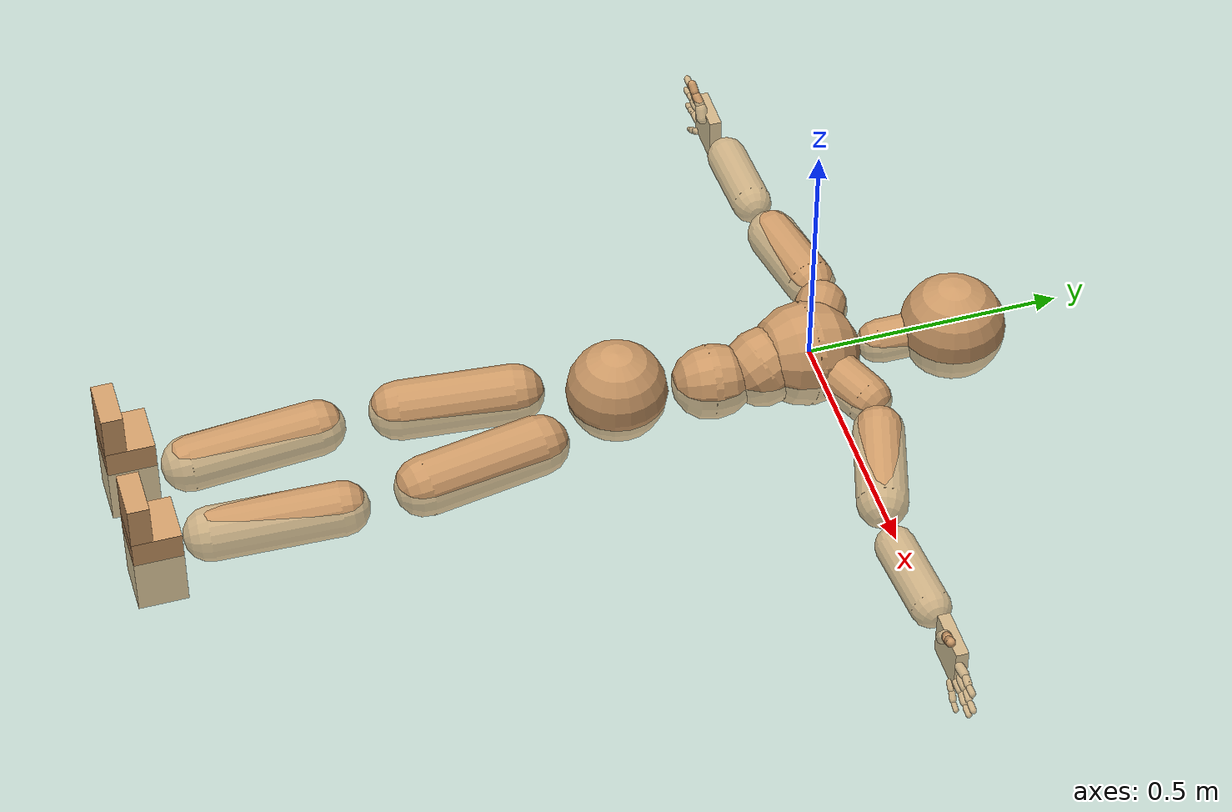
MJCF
<mujoco model="humanoid">
  <compiler coordinate="local"/>
  <default>
    <joint damping="0.0" armature="0.01" stiffness="0.0" limited="true"/>
    <geom conaffinity="1" condim="3" contype="7" margin="0.001" rgba="0.8 0.6 .4 1"/>
  </default>
  <asset>
    <texture type="skybox" builtin="gradient" rgb1=".4 .5 .6" rgb2="0 0 0" width="100" height="100"/>
    <texture builtin="flat" height="1278" mark="cross" markrgb="1 1 1" name="texgeom" random="0.01" rgb1="0.8 0.6 0.4" rgb2="0.8 0.6 0.4" type="cube" width="127"/>
    <texture builtin="checker" height="100" name="texplane" rgb1="0 0 0" rgb2="0.8 0.8 0.8" type="2d" width="100"/>
    <material name="MatPlane" reflectance="0.5" shininess="1" specular="1" texrepeat="60 60" texture="texplane"/>
    <material name="geom" texture="texgeom" texuniform="true"/>
  </asset>
  <worldbody>
    <light cutoff="100" diffuse="1 1 1" dir="-0 0 -1.3" directional="true" exponent="1" pos="0 0 1.3" specular=".1 .1 .1"/>
    <geom conaffinity="1" condim="3" name="floor" pos="0 0 0" rgba="0.8 0.9 0.8 1" size="100 100 .2" type="plane" material="MatPlane"/>
    <body name="Pelvis" pos="0.0028 -0.3841 0.0091">
      <freejoint name="Pelvis"/>
      <geom type="sphere" contype="1" conaffinity="1" density="4629.6296296296305" size="0.0975" pos="0.0000 0.0000 0.0000" name="Pelvis"/>
      <body name="L_Hip" pos="0.0563 -0.096 -0.0268">
        <joint name="L_Hip_x" type="hinge" pos="0 0 0" axis="1 0 0" user="250 2.5 1 500 10 2" armature="0.01" range="-90.0000 90.0000" damping="0" stiffness="0"/>
        <joint name="L_Hip_y" type="hinge" pos="0 0 0" axis="0 1 0" user="250 2.5 1 500 10 2" armature="0.01" range="-90.0000 90.0000" damping="0" stiffness="0"/>
        <joint name="L_Hip_z" type="hinge" pos="0 0 0" axis="0 0 1" user="250 2.5 1 500 10 2" armature="0.01" range="-90.0000 90.0000" damping="0" stiffness="0"/>
        <geom type="capsule" contype="1" conaffinity="1" density="2040.816327" fromto="0.0117 -0.0767 -0.0018 0.0468 -0.3069 -0.0071" size="0.0582" name="L_Hip"/>
        <body name="L_Knee" pos="0.0585 -0.3837 -0.0089">
          <joint name="L_Knee_x" type="hinge" pos="0 0 0" axis="1 0 0" user="250 2.5 1 500 10 2" armature="0.01" range="-180.0000 180.0000" damping="0" stiffness="0"/>
          <joint name="L_Knee_y" type="hinge" pos="0 0 0" axis="0 1 0" user="250 2.5 1 500 10 2" armature="0.01" range="-5.6250 5.6250" damping="0" stiffness="0"/>
          <joint name="L_Knee_z" type="hinge" pos="0 0 0" axis="0 0 1" user="250 2.5 1 500 10 2" armature="0.01" range="-5.6250 5.6250" damping="0" stiffness="0"/>
          <geom type="capsule" contype="1" conaffinity="1" density="1234.567901" fromto="-0.0085 -0.0816 -0.0065 -0.0340 -0.3264 -0.0261" size="0.0523" name="L_Knee"/>
          <body name="L_Ankle" pos="-0.0425 -0.408 -0.0326">
            <joint name="L_Ankle_x" type="hinge" pos="0 0 0" axis="1 0 0" user="150 2.5 1 500 10 2" armature="0.01" range="-90.0000 90.0000" damping="0" stiffness="0"/>
            <joint name="L_Ankle_y" type="hinge" pos="0 0 0" axis="0 1 0" user="150 2.5 1 500 10 2" armature="0.01" range="-90.0000 90.0000" damping="0" stiffness="0"/>
            <joint name="L_Ankle_z" type="hinge" pos="0 0 0" axis="0 0 1" user="150 2.5 1 500 10 2" armature="0.01" range="-90.0000 90.0000" damping="0" stiffness="0"/>
            <geom type="box" density="447.246152" pos="0.0411 -0.0299 0.0247" size="0.05 0.0473 0.0861" quat="1.0000 0.0000 0.0000 0.0000" name="L_Ankle"/>
            <body name="L_Toe" pos="0.0477 -0.0604 0.1203">
              <joint name="L_Toe_x" type="hinge" pos="0 0 0" axis="1 0 0" user="150 1 1 500 1 1" armature="0.01" range="-90.0000 90.0000" damping="0" stiffness="0"/>
              <joint name="L_Toe_y" type="hinge" pos="0 0 0" axis="0 1 0" user="150 1 1 500 1 1" armature="0.01" range="-45.0000 45.0000" damping="0" stiffness="0"/>
              <joint name="L_Toe_z" type="hinge" pos="0 0 0" axis="0 0 1" user="150 1 1 500 1 1" armature="0.01" range="-45.0000 45.0000" damping="0" stiffness="0"/>
              <geom type="box" density="423.851715" pos="-0.0066 0.0038 0.0261" size="0.048 0.0206 0.0499" quat="1.0000 0.0000 0.0000 0.0000" name="L_Toe"/>
            </body>
          </body>
        </body>
      </body>
      <body name="R_Hip" pos="-0.0612 -0.1078 -0.0223">
        <joint name="R_Hip_x" type="hinge" pos="0 0 0" axis="1 0 0" user="250 2.5 1 500 10 2" armature="0.01" range="-90.0000 90.0000" damping="0" stiffness="0"/>
        <joint name="R_Hip_y" type="hinge" pos="0 0 0" axis="0 1 0" user="250 2.5 1 500 10 2" armature="0.01" range="-90.0000 90.0000" damping="0" stiffness="0"/>
        <joint name="R_Hip_z" type="hinge" pos="0 0 0" axis="0 0 1" user="250 2.5 1 500 10 2" armature="0.01" range="-90.0000 90.0000" damping="0" stiffness="0"/>
        <geom type="capsule" contype="1" conaffinity="1" density="2040.816327" fromto="-0.0095 -0.0733 -0.0032 -0.0382 -0.2931 -0.0128" size="0.0574" name="R_Hip"/>
        <body name="R_Knee" pos="-0.0477 -0.3663 -0.016">
          <joint name="R_Knee_x" type="hinge" pos="0 0 0" axis="1 0 0" user="250 2.5 1 500 10 2" armature="0.01" range="-180.0000 180.0000" damping="0" stiffness="0"/>
          <joint name="R_Knee_y" type="hinge" pos="0 0 0" axis="0 1 0" user="250 2.5 1 500 10 2" armature="0.01" range="-5.6250 5.6250" damping="0" stiffness="0"/>
          <joint name="R_Knee_z" type="hinge" pos="0 0 0" axis="0 0 1" user="250 2.5 1 500 10 2" armature="0.01" range="-5.6250 5.6250" damping="0" stiffness="0"/>
          <geom type="capsule" contype="1" conaffinity="1" density="1234.567901" fromto="0.0029 -0.0833 -0.0042 0.0117 -0.3330 -0.0168" size="0.0539" name="R_Knee"/>
          <body name="R_Ankle" pos="0.0146 -0.4163 -0.021">
            <joint name="R_Ankle_x" type="hinge" pos="0 0 0" axis="1 0 0" user="150 1 1 500 10 2" armature="0.01" range="-90.0000 90.0000" damping="0" stiffness="0"/>
            <joint name="R_Ankle_y" type="hinge" pos="0 0 0" axis="0 1 0" user="150 1 1 500 10 2" armature="0.01" range="-90.0000 90.0000" damping="0" stiffness="0"/>
            <joint name="R_Ankle_z" type="hinge" pos="0 0 0" axis="0 0 1" user="150 1 1 500 10 2" armature="0.01" range="-90.0000 90.0000" damping="0" stiffness="0"/>
            <geom type="box" density="447.234243" pos="-0.0246 -0.0273 0.0156" size="0.05 0.0473 0.0861" quat="1.0000 0.0000 0.0000 0.0000" name="R_Ankle"/>
            <body name="R_Toe" pos="-0.0392 -0.0606 0.1211">
              <joint name="R_Toe_x" type="hinge" pos="0 0 0" axis="1 0 0" user="150 1 1 500 1 1" armature="0.01" range="-90.0000 90.0000" damping="0" stiffness="0"/>
              <joint name="R_Toe_y" type="hinge" pos="0 0 0" axis="0 1 0" user="150 1 1 500 1 1" armature="0.01" range="-45.0000 45.0000" damping="0" stiffness="0"/>
              <joint name="R_Toe_z" type="hinge" pos="0 0 0" axis="0 0 1" user="150 1 1 500 1 1" armature="0.01" range="-45.0000 45.0000" damping="0" stiffness="0"/>
              <geom type="box" density="423.868837" pos="0.0146 0.0066 0.0162" size="0.048 0.0206 0.0499" quat="1.0000 0.0000 0.0000 0.0000" name="R_Toe"/>
            </body>
          </body>
        </body>
      </body>
      <body name="Torso" pos="-0.0023 0.1144 -0.027">
        <joint name="Torso_x" type="hinge" pos="0 0 0" axis="1 0 0" user="500 5 1 500 10 2" armature="0.01" range="-60.0000 60.0000" damping="0" stiffness="0"/>
        <joint name="Torso_y" type="hinge" pos="0 0 0" axis="0 1 0" user="500 5 1 500 10 2" armature="0.01" range="-60.0000 60.0000" damping="0" stiffness="0"/>
        <joint name="Torso_z" type="hinge" pos="0 0 0" axis="0 0 1" user="500 5 1 500 10 2" armature="0.01" range="-60.0000 60.0000" damping="0" stiffness="0"/>
        <geom type="capsule" contype="1" conaffinity="1" density="2040.816327" fromto="0.0041 0.0667 -0.0020 0.0050 0.0816 -0.0025" size="0.0717" name="Torso"/>
        <body name="Spine" pos="0.009 0.1483 -0.0045">
          <joint name="Spine_x" type="hinge" pos="0 0 0" axis="1 0 0" user="500 5 1 500 10 2" armature="0.01" range="-60.0000 60.0000" damping="0" stiffness="0"/>
          <joint name="Spine_y" type="hinge" pos="0 0 0" axis="0 1 0" user="500 5 1 500 10 2" armature="0.01" range="-60.0000 60.0000" damping="0" stiffness="0"/>
          <joint name="Spine_z" type="hinge" pos="0 0 0" axis="0 0 1" user="500 5 1 500 10 2" armature="0.01" range="-60.0000 60.0000" damping="0" stiffness="0"/>
          <geom type="capsule" contype="1" conaffinity="1" density="2040.816327" fromto="-0.0051 0.0252 0.0108 -0.0062 0.0308 0.0132" size="0.0754" name="Spine"/>
          <body name="Chest" pos="-0.0113 0.0559 0.024">
            <joint name="Chest_x" type="hinge" pos="0 0 0" axis="1 0 0" user="500 5 1 500 10 2" armature="0.01" range="-60.0000 60.0000" damping="0" stiffness="0"/>
            <joint name="Chest_y" type="hinge" pos="0 0 0" axis="0 1 0" user="500 5 1 500 10 2" armature="0.01" range="-60.0000 60.0000" damping="0" stiffness="0"/>
            <joint name="Chest_z" type="hinge" pos="0 0 0" axis="0 0 1" user="500 5 1 500 10 2" armature="0.01" range="-60.0000 60.0000" damping="0" stiffness="0"/>
            <geom type="capsule" contype="1" conaffinity="1" density="2040.816327" fromto="-0.0018 0.0526 -0.0073 -0.0022 0.0643 -0.0089" size="0.1002" name="Chest"/>
            <body name="Neck" pos="-0.0115 0.1738 -0.0287">
              <joint name="Neck_x" type="hinge" pos="0 0 0" axis="1 0 0" user="150 1 1 250 50 4" armature="0.01" range="-180.0000 180.0000" damping="0" stiffness="0"/>
              <joint name="Neck_y" type="hinge" pos="0 0 0" axis="0 1 0" user="150 1 1 250 50 4" armature="0.01" range="-180.0000 180.0000" damping="0" stiffness="0"/>
              <joint name="Neck_z" type="hinge" pos="0 0 0" axis="0 0 1" user="150 1 1 250 50 4" armature="0.01" range="-180.0000 180.0000" damping="0" stiffness="0"/>
              <geom type="capsule" contype="1" conaffinity="1" density="1000" fromto="0.0049 0.0354 0.0051 0.0195 0.1415 0.0203" size="0.0425" name="Neck"/>
              <body name="Head" pos="0.0244 0.1769 0.0254">
                <joint name="Head_x" type="hinge" pos="0 0 0" axis="1 0 0" user="150 1 1 250 50 4" armature="0.01" range="-90.0000 90.0000" damping="0" stiffness="0"/>
                <joint name="Head_y" type="hinge" pos="0 0 0" axis="0 1 0" user="150 1 1 250 50 4" armature="0.01" range="-90.0000 90.0000" damping="0" stiffness="0"/>
                <joint name="Head_z" type="hinge" pos="0 0 0" axis="0 0 1" user="150 1 1 250 50 4" armature="0.01" range="-90.0000 90.0000" damping="0" stiffness="0"/>
                <geom type="sphere" contype="1" conaffinity="1" density="1000" size="0.1027" pos="0.0000 0.0000 0.0000" name="Head"/>
              </body>
            </body>
            <body name="L_Thorax" pos="0.0452 0.0887 -0.0069">
              <joint name="L_Thorax_x" type="hinge" pos="0 0 0" axis="1 0 0" user="200 2 1 500 50 4" armature="0.01" range="-180.0000 180.0000" damping="0" stiffness="0"/>
              <joint name="L_Thorax_y" type="hinge" pos="0 0 0" axis="0 1 0" user="200 2 1 500 50 4" armature="0.01" range="-180.0000 180.0000" damping="0" stiffness="0"/>
              <joint name="L_Thorax_z" type="hinge" pos="0 0 0" axis="0 0 1" user="200 2 1 500 50 4" armature="0.01" range="-180.0000 180.0000" damping="0" stiffness="0"/>
              <geom type="capsule" contype="1" conaffinity="1" density="1000" fromto="0.0231 0.0120 -0.0032 0.0923 0.0481 -0.0128" size="0.0473" name="L_Thorax"/>
              <body name="L_Shoulder" pos="0.1154 0.0602 -0.016">
                <joint name="L_Shoulder_x" type="hinge" pos="0 0 0" axis="1 0 0" user="200 2 1 500 50 4" armature="0.01" range="-180.0000 180.0000" damping="0" stiffness="0"/>
                <joint name="L_Shoulder_y" type="hinge" pos="0 0 0" axis="0 1 0" user="200 2 1 500 50 4" armature="0.01" range="-180.0000 180.0000" damping="0" stiffness="0"/>
                <joint name="L_Shoulder_z" type="hinge" pos="0 0 0" axis="0 0 1" user="200 2 1 500 50 4" armature="0.01" range="-180.0000 180.0000" damping="0" stiffness="0"/>
                <geom type="capsule" contype="1" conaffinity="1" density="1000" fromto="0.0512 -0.0147 -0.0077 0.2047 -0.0589 -0.0309" size="0.0496" name="L_Shoulder"/>
                <body name="L_Elbow" pos="0.2559 -0.0736 -0.0386">
                  <joint name="L_Elbow_x" type="hinge" pos="0 0 0" axis="1 0 0" user="150 1 1 150 10 2" armature="0.01" range="-720.0000 720.0000" damping="0" stiffness="0"/>
                  <joint name="L_Elbow_y" type="hinge" pos="0 0 0" axis="0 1 0" user="150 1 1 150 10 2" armature="0.01" range="-720.0000 720.0000" damping="0" stiffness="0"/>
                  <joint name="L_Elbow_z" type="hinge" pos="0 0 0" axis="0 0 1" user="150 1 1 150 10 2" armature="0.01" range="-720.0000 720.0000" damping="0" stiffness="0"/>
                  <geom type="capsule" contype="1" conaffinity="1" density="1000" fromto="0.0518 0.0043 -0.0006 0.2072 0.0173 -0.0025" size="0.0392" name="L_Elbow"/>
                  <body name="L_Wrist" pos="0.2591 0.0216 -0.0031">
                    <joint name="L_Wrist_x" type="hinge" pos="0 0 0" axis="1 0 0" user="100 1 1 150 1 1" armature="0.01" range="-180.0000 180.0000" damping="0" stiffness="0"/>
                    <joint name="L_Wrist_y" type="hinge" pos="0 0 0" axis="0 1 0" user="100 1 1 150 1 1" armature="0.01" range="-180.0000 180.0000" damping="0" stiffness="0"/>
                    <joint name="L_Wrist_z" type="hinge" pos="0 0 0" axis="0 0 1" user="100 1 1 150 1 1" armature="0.01" range="-180.0000 180.0000" damping="0" stiffness="0"/>
                    <geom type="box" density="1203.16006" pos="0.0538 -0.0017 -0.0033" size="0.0497 0.0123 0.0457" quat="1.0000 0.0000 0.0000 0.0000" name="L_Wrist"/>
                    <body name="L_Index1" pos="0.1048 -0.009 0.0189">
                      <joint name="L_Index1_x" type="hinge" pos="0 0 0" axis="1 0 0" user="100 10 1 150" armature="0.01" range="-180.0000 180.0000" damping="0" stiffness="0"/>
                      <joint name="L_Index1_y" type="hinge" pos="0 0 0" axis="0 1 0" user="100 10 1 150" armature="0.01" range="-180.0000 180.0000" damping="0" stiffness="0"/>
                      <joint name="L_Index1_z" type="hinge" pos="0 0 0" axis="0 0 1" user="100 10 1 150" armature="0.01" range="-180.0000 180.0000" damping="0" stiffness="0"/>
                      <geom type="capsule" contype="1" conaffinity="1" density="1000" fromto="0.0064 0.0004 0.0006 0.0258 0.0018 0.0022" size="0.0092" name="L_Index1"/>
                      <body name="L_Index2" pos="0.0322 0.0022 0.0028">
                        <joint name="L_Index2_x" type="hinge" pos="0 0 0" axis="1 0 0" user="100 10 1 150" armature="0.01" range="-180.0000 180.0000" damping="0" stiffness="0"/>
                        <joint name="L_Index2_y" type="hinge" pos="0 0 0" axis="0 1 0" user="100 10 1 150" armature="0.01" range="-180.0000 180.0000" damping="0" stiffness="0"/>
                        <joint name="L_Index2_z" type="hinge" pos="0 0 0" axis="0 0 1" user="100 10 1 150" armature="0.01" range="-180.0000 180.0000" damping="0" stiffness="0"/>
                        <geom type="capsule" contype="1" conaffinity="1" density="1000" fromto="0.0045 -0.0005 -0.0000 0.0182 -0.0020 -0.0001" size="0.0076" name="L_Index2"/>
                        <body name="L_Index3" pos="0.0227 -0.0024 -0.0001">
                          <joint name="L_Index3_x" type="hinge" pos="0 0 0" axis="1 0 0" user="100 10 1 150" armature="0.01" range="-180.0000 180.0000" damping="0" stiffness="0"/>
                          <joint name="L_Index3_y" type="hinge" pos="0 0 0" axis="0 1 0" user="100 10 1 150" armature="0.01" range="-180.0000 180.0000" damping="0" stiffness="0"/>
                          <joint name="L_Index3_z" type="hinge" pos="0 0 0" axis="0 0 1" user="100 10 1 150" armature="0.01" range="-180.0000 180.0000" damping="0" stiffness="0"/>
                          <geom type="capsule" contype="1" conaffinity="1" density="1000" fromto="0.0049 -0.0001 0.0004 0.0198 -0.0004 0.0015" size="0.0064" name="L_Index3"/>
                        </body>
                      </body>
                    </body>
                    <body name="L_Middle1" pos="0.1124 -0.0068 -0.0044">
                      <joint name="L_Middle1_x" type="hinge" pos="0 0 0" axis="1 0 0" user="100 10 1 150" armature="0.01" range="-180.0000 180.0000" damping="0" stiffness="0"/>
                      <joint name="L_Middle1_y" type="hinge" pos="0 0 0" axis="0 1 0" user="100 10 1 150" armature="0.01" range="-180.0000 180.0000" damping="0" stiffness="0"/>
                      <joint name="L_Middle1_z" type="hinge" pos="0 0 0" axis="0 0 1" user="100 10 1 150" armature="0.01" range="-180.0000 180.0000" damping="0" stiffness="0"/>
                      <geom type="capsule" contype="1" conaffinity="1" density="1000" fromto="0.0062 0.0001 -0.0008 0.0246 0.0006 -0.0033" size="0.0094" name="L_Middle1"/>
                      <body name="L_Middle2" pos="0.0308 0.0007 -0.0041">
                        <joint name="L_Middle2_x" type="hinge" pos="0 0 0" axis="1 0 0" user="100 10 1 150" armature="0.01" range="-180.0000 180.0000" damping="0" stiffness="0"/>
                        <joint name="L_Middle2_y" type="hinge" pos="0 0 0" axis="0 1 0" user="100 10 1 150" armature="0.01" range="-180.0000 180.0000" damping="0" stiffness="0"/>
                        <joint name="L_Middle2_z" type="hinge" pos="0 0 0" axis="0 0 1" user="100 10 1 150" armature="0.01" range="-180.0000 180.0000" damping="0" stiffness="0"/>
                        <geom type="capsule" contype="1" conaffinity="1" density="1000" fromto="0.0047 -0.0004 -0.0008 0.0189 -0.0016 -0.0034" size="0.007" name="L_Middle2"/>
                        <body name="L_Middle3" pos="0.0237 -0.002 -0.0042">
                          <joint name="L_Middle3_x" type="hinge" pos="0 0 0" axis="1 0 0" user="100 10 1 150" armature="0.01" range="-180.0000 180.0000" damping="0" stiffness="0"/>
                          <joint name="L_Middle3_y" type="hinge" pos="0 0 0" axis="0 1 0" user="100 10 1 150" armature="0.01" range="-180.0000 180.0000" damping="0" stiffness="0"/>
                          <joint name="L_Middle3_z" type="hinge" pos="0 0 0" axis="0 0 1" user="100 10 1 150" armature="0.01" range="-180.0000 180.0000" damping="0" stiffness="0"/>
                          <geom type="capsule" contype="1" conaffinity="1" density="1000" fromto="0.0051 0.0000 -0.0004 0.0205 0.0000 -0.0018" size="0.0061" name="L_Middle3"/>
                        </body>
                      </body>
                    </body>
                    <body name="L_Pinky1" pos="0.0871 -0.015 -0.0437">
                      <joint name="L_Pinky1_x" type="hinge" pos="0 0 0" axis="1 0 0" user="100 10 1 150" armature="0.01" range="-180.0000 180.0000" damping="0" stiffness="0"/>
                      <joint name="L_Pinky1_y" type="hinge" pos="0 0 0" axis="0 1 0" user="100 10 1 150" armature="0.01" range="-180.0000 180.0000" damping="0" stiffness="0"/>
                      <joint name="L_Pinky1_z" type="hinge" pos="0 0 0" axis="0 0 1" user="100 10 1 150" armature="0.01" range="-180.0000 180.0000" damping="0" stiffness="0"/>
                      <geom type="capsule" contype="1" conaffinity="1" density="1000" fromto="0.0032 -0.0002 -0.0024 0.0127 -0.0009 -0.0094" size="0.0067" name="L_Pinky1"/>
                      <body name="L_Pinky2" pos="0.0159 -0.0011 -0.0118">
                        <joint name="L_Pinky2_x" type="hinge" pos="0 0 0" axis="1 0 0" user="100 10 1 150" armature="0.01" range="-180.0000 180.0000" damping="0" stiffness="0"/>
                        <joint name="L_Pinky2_y" type="hinge" pos="0 0 0" axis="0 1 0" user="100 10 1 150" armature="0.01" range="-180.0000 180.0000" damping="0" stiffness="0"/>
                        <joint name="L_Pinky2_z" type="hinge" pos="0 0 0" axis="0 0 1" user="100 10 1 150" armature="0.01" range="-180.0000 180.0000" damping="0" stiffness="0"/>
                        <geom type="capsule" contype="1" conaffinity="1" density="1000" fromto="0.0031 -0.0003 -0.0022 0.0126 -0.0014 -0.0089" size="0.0065" name="L_Pinky2"/>
                        <body name="L_Pinky3" pos="0.0157 -0.0017 -0.0111">
                          <joint name="L_Pinky3_x" type="hinge" pos="0 0 0" axis="1 0 0" user="100 10 1 150" armature="0.01" range="-180.0000 180.0000" damping="0" stiffness="0"/>
                          <joint name="L_Pinky3_y" type="hinge" pos="0 0 0" axis="0 1 0" user="100 10 1 150" armature="0.01" range="-180.0000 180.0000" damping="0" stiffness="0"/>
                          <joint name="L_Pinky3_z" type="hinge" pos="0 0 0" axis="0 0 1" user="100 10 1 150" armature="0.01" range="-180.0000 180.0000" damping="0" stiffness="0"/>
                          <geom type="capsule" contype="1" conaffinity="1" density="1000" fromto="0.0035 0.0001 -0.0018 0.0142 0.0002 -0.0073" size="0.005" name="L_Pinky3"/>
                        </body>
                      </body>
                    </body>
                    <body name="L_Ring1" pos="0.1005 -0.0097 -0.0275">
                      <joint name="L_Ring1_x" type="hinge" pos="0 0 0" axis="1 0 0" user="100 10 1 150" armature="0.01" range="-180.0000 180.0000" damping="0" stiffness="0"/>
                      <joint name="L_Ring1_y" type="hinge" pos="0 0 0" axis="0 1 0" user="100 10 1 150" armature="0.01" range="-180.0000 180.0000" damping="0" stiffness="0"/>
                      <joint name="L_Ring1_z" type="hinge" pos="0 0 0" axis="0 0 1" user="100 10 1 150" armature="0.01" range="-180.0000 180.0000" damping="0" stiffness="0"/>
                      <geom type="capsule" contype="1" conaffinity="1" density="1000" fromto="0.0057 0.0003 -0.0011 0.0227 0.0012 -0.0042" size="0.008" name="L_Ring1"/>
                      <body name="L_Ring2" pos="0.0284 0.0016 -0.0053">
                        <joint name="L_Ring2_x" type="hinge" pos="0 0 0" axis="1 0 0" user="100 10 1 150" armature="0.01" range="-180.0000 180.0000" damping="0" stiffness="0"/>
                        <joint name="L_Ring2_y" type="hinge" pos="0 0 0" axis="0 1 0" user="100 10 1 150" armature="0.01" range="-180.0000 180.0000" damping="0" stiffness="0"/>
                        <joint name="L_Ring2_z" type="hinge" pos="0 0 0" axis="0 0 1" user="100 10 1 150" armature="0.01" range="-180.0000 180.0000" damping="0" stiffness="0"/>
                        <geom type="capsule" contype="1" conaffinity="1" density="1000" fromto="0.0046 -0.0003 -0.0014 0.0184 -0.0011 -0.0057" size="0.0074" name="L_Ring2"/>
                        <body name="L_Ring3" pos="0.023 -0.0014 -0.0071">
                          <joint name="L_Ring3_x" type="hinge" pos="0 0 0" axis="1 0 0" user="100 10 1 150" armature="0.01" range="-180.0000 180.0000" damping="0" stiffness="0"/>
                          <joint name="L_Ring3_y" type="hinge" pos="0 0 0" axis="0 1 0" user="100 10 1 150" armature="0.01" range="-180.0000 180.0000" damping="0" stiffness="0"/>
                          <joint name="L_Ring3_z" type="hinge" pos="0 0 0" axis="0 0 1" user="100 10 1 150" armature="0.01" range="-180.0000 180.0000" damping="0" stiffness="0"/>
                          <geom type="capsule" contype="1" conaffinity="1" density="1000" fromto="0.0050 0.0001 -0.0010 0.0200 0.0005 -0.0041" size="0.0058" name="L_Ring3"/>
                        </body>
                      </body>
                    </body>
                    <body name="L_Thumb1" pos="0.0425 -0.0186 0.0253">
                      <joint name="L_Thumb1_x" type="hinge" pos="0 0 0" axis="1 0 0" user="100 10 1 150" armature="0.01" range="-180.0000 180.0000" damping="0" stiffness="0"/>
                      <joint name="L_Thumb1_y" type="hinge" pos="0 0 0" axis="0 1 0" user="100 10 1 150" armature="0.01" range="-180.0000 180.0000" damping="0" stiffness="0"/>
                      <joint name="L_Thumb1_z" type="hinge" pos="0 0 0" axis="0 0 1" user="100 10 1 150" armature="0.01" range="-180.0000 180.0000" damping="0" stiffness="0"/>
                      <geom type="capsule" contype="1" conaffinity="1" density="1000" fromto="0.0035 0.0002 0.0050 0.0141 0.0007 0.0200" size="0.0121" name="L_Thumb1"/>
                      <body name="L_Thumb2" pos="0.0177 0.0009 0.025">
                        <joint name="L_Thumb2_x" type="hinge" pos="0 0 0" axis="1 0 0" user="100 10 1 150" armature="0.01" range="-180.0000 180.0000" damping="0" stiffness="0"/>
                        <joint name="L_Thumb2_y" type="hinge" pos="0 0 0" axis="0 1 0" user="100 10 1 150" armature="0.01" range="-180.0000 180.0000" damping="0" stiffness="0"/>
                        <joint name="L_Thumb2_z" type="hinge" pos="0 0 0" axis="0 0 1" user="100 10 1 150" armature="0.01" range="-180.0000 180.0000" damping="0" stiffness="0"/>
                        <geom type="capsule" contype="1" conaffinity="1" density="1000" fromto="0.0043 -0.0010 0.0031 0.0171 -0.0039 0.0123" size="0.0096" name="L_Thumb2"/>
                        <body name="L_Thumb3" pos="0.0213 -0.0049 0.0154">
                          <joint name="L_Thumb3_x" type="hinge" pos="0 0 0" axis="1 0 0" user="100 10 1 150" armature="0.01" range="-180.0000 180.0000" damping="0" stiffness="0"/>
                          <joint name="L_Thumb3_y" type="hinge" pos="0 0 0" axis="0 1 0" user="100 10 1 150" armature="0.01" range="-180.0000 180.0000" damping="0" stiffness="0"/>
                          <joint name="L_Thumb3_z" type="hinge" pos="0 0 0" axis="0 0 1" user="100 10 1 150" armature="0.01" range="-180.0000 180.0000" damping="0" stiffness="0"/>
                          <geom type="capsule" contype="1" conaffinity="1" density="1000" fromto="0.0047 -0.0006 0.0035 0.0187 -0.0023 0.0139" size="0.0087" name="L_Thumb3"/>
                        </body>
                      </body>
                    </body>
                  </body>
                </body>
              </body>
            </body>
            <body name="R_Thorax" pos="-0.0459 0.0881 -0.0128">
              <joint name="R_Thorax_x" type="hinge" pos="0 0 0" axis="1 0 0" user="200 2 1 150 10 2" armature="0.01" range="-180.0000 180.0000" damping="0" stiffness="0"/>
              <joint name="R_Thorax_y" type="hinge" pos="0 0 0" axis="0 1 0" user="200 2 1 150 10 2" armature="0.01" range="-180.0000 180.0000" damping="0" stiffness="0"/>
              <joint name="R_Thorax_z" type="hinge" pos="0 0 0" axis="0 0 1" user="200 2 1 150 10 2" armature="0.01" range="-180.0000 180.0000" damping="0" stiffness="0"/>
              <geom type="capsule" contype="1" conaffinity="1" density="1000" fromto="-0.0199 0.0111 -0.0024 -0.0797 0.0445 -0.0094" size="0.052" name="R_Thorax"/>
              <body name="R_Shoulder" pos="-0.0996 0.0556 -0.0118">
                <joint name="R_Shoulder_x" type="hinge" pos="0 0 0" axis="1 0 0" user="200 2 1 250 10 2" armature="0.01" range="-180.0000 180.0000" damping="0" stiffness="0"/>
                <joint name="R_Shoulder_y" type="hinge" pos="0 0 0" axis="0 1 0" user="200 2 1 250 10 2" armature="0.01" range="-180.0000 180.0000" damping="0" stiffness="0"/>
                <joint name="R_Shoulder_z" type="hinge" pos="0 0 0" axis="0 0 1" user="200 2 1 250 10 2" armature="0.01" range="-180.0000 180.0000" damping="0" stiffness="0"/>
                <geom type="capsule" contype="1" conaffinity="1" density="1000" fromto="-0.0545 -0.0077 -0.0049 -0.2182 -0.0310 -0.0197" size="0.0495" name="R_Shoulder"/>
                <body name="R_Elbow" pos="-0.2727 -0.0387 -0.0247">
                  <joint name="R_Elbow_x" type="hinge" pos="0 0 0" axis="1 0 0" user="150 1 1 150 10 2" armature="0.01" range="-720.0000 720.0000" damping="0" stiffness="0"/>
                  <joint name="R_Elbow_y" type="hinge" pos="0 0 0" axis="0 1 0" user="150 1 1 150 10 2" armature="0.01" range="-720.0000 720.0000" damping="0" stiffness="0"/>
                  <joint name="R_Elbow_z" type="hinge" pos="0 0 0" axis="0 0 1" user="150 1 1 150 10 2" armature="0.01" range="-720.0000 720.0000" damping="0" stiffness="0"/>
                  <geom type="capsule" contype="1" conaffinity="1" density="1000" fromto="-0.0512 -0.0010 -0.0032 -0.2047 -0.0039 -0.0127" size="0.0395" name="R_Elbow"/>
                  <body name="R_Wrist" pos="-0.2558 -0.0049 -0.0159">
                    <joint name="R_Wrist_x" type="hinge" pos="0 0 0" axis="1 0 0" user="100 1 1 150 1 1" armature="0.01" range="-180.0000 180.0000" damping="0" stiffness="0"/>
                    <joint name="R_Wrist_y" type="hinge" pos="0 0 0" axis="0 1 0" user="100 1 1 150 1 1" armature="0.01" range="-180.0000 180.0000" damping="0" stiffness="0"/>
                    <joint name="R_Wrist_z" type="hinge" pos="0 0 0" axis="0 0 1" user="100 1 1 150 1 1" armature="0.01" range="-180.0000 180.0000" damping="0" stiffness="0"/>
                    <geom type="box" density="1232.204217" pos="-0.0551 -0.0049 -0.0028" size="0.0467 0.0123 0.0457" quat="1.0000 0.0000 0.0000 0.0000" name="R_Wrist"/>
                    <body name="R_Index1" pos="-0.1027 -0.0123 0.0195">
                      <joint name="R_Index1_x" type="hinge" pos="0 0 0" axis="1 0 0" user="100 10 1 150" armature="0.01" range="-180.0000 180.0000" damping="0" stiffness="0"/>
                      <joint name="R_Index1_y" type="hinge" pos="0 0 0" axis="0 1 0" user="100 10 1 150" armature="0.01" range="-180.0000 180.0000" damping="0" stiffness="0"/>
                      <joint name="R_Index1_z" type="hinge" pos="0 0 0" axis="0 0 1" user="100 10 1 150" armature="0.01" range="-180.0000 180.0000" damping="0" stiffness="0"/>
                      <geom type="capsule" contype="1" conaffinity="1" density="1000" fromto="-0.0064 0.0004 0.0006 -0.0258 0.0018 0.0022" size="0.0092" name="R_Index1"/>
                      <body name="R_Index2" pos="-0.0322 0.0022 0.0028">
                        <joint name="R_Index2_x" type="hinge" pos="0 0 0" axis="1 0 0" user="100 10 1 150" armature="0.01" range="-180.0000 180.0000" damping="0" stiffness="0"/>
                        <joint name="R_Index2_y" type="hinge" pos="0 0 0" axis="0 1 0" user="100 10 1 150" armature="0.01" range="-180.0000 180.0000" damping="0" stiffness="0"/>
                        <joint name="R_Index2_z" type="hinge" pos="0 0 0" axis="0 0 1" user="100 10 1 150" armature="0.01" range="-180.0000 180.0000" damping="0" stiffness="0"/>
                        <geom type="capsule" contype="1" conaffinity="1" density="1000" fromto="-0.0045 -0.0005 -0.0000 -0.0182 -0.0020 -0.0001" size="0.0076" name="R_Index2"/>
                        <body name="R_Index3" pos="-0.0227 -0.0024 -0.0001">
                          <joint name="R_Index3_x" type="hinge" pos="0 0 0" axis="1 0 0" user="100 10 1 150" armature="0.01" range="-180.0000 180.0000" damping="0" stiffness="0"/>
                          <joint name="R_Index3_y" type="hinge" pos="0 0 0" axis="0 1 0" user="100 10 1 150" armature="0.01" range="-180.0000 180.0000" damping="0" stiffness="0"/>
                          <joint name="R_Index3_z" type="hinge" pos="0 0 0" axis="0 0 1" user="100 10 1 150" armature="0.01" range="-180.0000 180.0000" damping="0" stiffness="0"/>
                          <geom type="capsule" contype="1" conaffinity="1" density="1000" fromto="-0.0041 -0.0001 0.0004 -0.0166 -0.0004 0.0015" size="0.0067" name="R_Index3"/>
                        </body>
                      </body>
                    </body>
                    <body name="R_Middle1" pos="-0.1103 -0.01 -0.0038">
                      <joint name="R_Middle1_x" type="hinge" pos="0 0 0" axis="1 0 0" user="100 10 1 150" armature="0.01" range="-180.0000 180.0000" damping="0" stiffness="0"/>
                      <joint name="R_Middle1_y" type="hinge" pos="0 0 0" axis="0 1 0" user="100 10 1 150" armature="0.01" range="-180.0000 180.0000" damping="0" stiffness="0"/>
                      <joint name="R_Middle1_z" type="hinge" pos="0 0 0" axis="0 0 1" user="100 10 1 150" armature="0.01" range="-180.0000 180.0000" damping="0" stiffness="0"/>
                      <geom type="capsule" contype="1" conaffinity="1" density="1000" fromto="-0.0062 0.0001 -0.0008 -0.0246 0.0006 -0.0033" size="0.0094" name="R_Middle1"/>
                      <body name="R_Middle2" pos="-0.0308 0.0007 -0.0041">
                        <joint name="R_Middle2_x" type="hinge" pos="0 0 0" axis="1 0 0" user="100 10 1 150" armature="0.01" range="-180.0000 180.0000" damping="0" stiffness="0"/>
                        <joint name="R_Middle2_y" type="hinge" pos="0 0 0" axis="0 1 0" user="100 10 1 150" armature="0.01" range="-180.0000 180.0000" damping="0" stiffness="0"/>
                        <joint name="R_Middle2_z" type="hinge" pos="0 0 0" axis="0 0 1" user="100 10 1 150" armature="0.01" range="-180.0000 180.0000" damping="0" stiffness="0"/>
                        <geom type="capsule" contype="1" conaffinity="1" density="1000" fromto="-0.0047 -0.0004 -0.0008 -0.0189 -0.0016 -0.0034" size="0.007" name="R_Middle2"/>
                        <body name="R_Middle3" pos="-0.0237 -0.002 -0.0042">
                          <joint name="R_Middle3_x" type="hinge" pos="0 0 0" axis="1 0 0" user="100 10 1 150" armature="0.01" range="-180.0000 180.0000" damping="0" stiffness="0"/>
                          <joint name="R_Middle3_y" type="hinge" pos="0 0 0" axis="0 1 0" user="100 10 1 150" armature="0.01" range="-180.0000 180.0000" damping="0" stiffness="0"/>
                          <joint name="R_Middle3_z" type="hinge" pos="0 0 0" axis="0 0 1" user="100 10 1 150" armature="0.01" range="-180.0000 180.0000" damping="0" stiffness="0"/>
                          <geom type="capsule" contype="1" conaffinity="1" density="1000" fromto="-0.0043 0.0000 -0.0004 -0.0173 0.0000 -0.0018" size="0.0064" name="R_Middle3"/>
                        </body>
                      </body>
                    </body>
                    <body name="R_Pinky1" pos="-0.085 -0.0182 -0.0431">
                      <joint name="R_Pinky1_x" type="hinge" pos="0 0 0" axis="1 0 0" user="100 10 1 150" armature="0.01" range="-180.0000 180.0000" damping="0" stiffness="0"/>
                      <joint name="R_Pinky1_y" type="hinge" pos="0 0 0" axis="0 1 0" user="100 10 1 150" armature="0.01" range="-180.0000 180.0000" damping="0" stiffness="0"/>
                      <joint name="R_Pinky1_z" type="hinge" pos="0 0 0" axis="0 0 1" user="100 10 1 150" armature="0.01" range="-180.0000 180.0000" damping="0" stiffness="0"/>
                      <geom type="capsule" contype="1" conaffinity="1" density="1000" fromto="-0.0032 -0.0002 -0.0024 -0.0127 -0.0009 -0.0094" size="0.0067" name="R_Pinky1"/>
                      <body name="R_Pinky2" pos="-0.0159 -0.0011 -0.0118">
                        <joint name="R_Pinky2_x" type="hinge" pos="0 0 0" axis="1 0 0" user="100 10 1 150" armature="0.01" range="-180.0000 180.0000" damping="0" stiffness="0"/>
                        <joint name="R_Pinky2_y" type="hinge" pos="0 0 0" axis="0 1 0" user="100 10 1 150" armature="0.01" range="-180.0000 180.0000" damping="0" stiffness="0"/>
                        <joint name="R_Pinky2_z" type="hinge" pos="0 0 0" axis="0 0 1" user="100 10 1 150" armature="0.01" range="-180.0000 180.0000" damping="0" stiffness="0"/>
                        <geom type="capsule" contype="1" conaffinity="1" density="1000" fromto="-0.0031 -0.0003 -0.0022 -0.0126 -0.0014 -0.0089" size="0.0065" name="R_Pinky2"/>
                        <body name="R_Pinky3" pos="-0.0157 -0.0017 -0.0111">
                          <joint name="R_Pinky3_x" type="hinge" pos="0 0 0" axis="1 0 0" user="100 10 1 150" armature="0.01" range="-180.0000 180.0000" damping="0" stiffness="0"/>
                          <joint name="R_Pinky3_y" type="hinge" pos="0 0 0" axis="0 1 0" user="100 10 1 150" armature="0.01" range="-180.0000 180.0000" damping="0" stiffness="0"/>
                          <joint name="R_Pinky3_z" type="hinge" pos="0 0 0" axis="0 0 1" user="100 10 1 150" armature="0.01" range="-180.0000 180.0000" damping="0" stiffness="0"/>
                          <geom type="capsule" contype="1" conaffinity="1" density="1000" fromto="-0.0027 0.0001 -0.0018 -0.0110 0.0002 -0.0073" size="0.0052" name="R_Pinky3"/>
                        </body>
                      </body>
                    </body>
                    <body name="R_Ring1" pos="-0.0985 -0.0129 -0.0269">
                      <joint name="R_Ring1_x" type="hinge" pos="0 0 0" axis="1 0 0" user="100 10 1 150" armature="0.01" range="-180.0000 180.0000" damping="0" stiffness="0"/>
                      <joint name="R_Ring1_y" type="hinge" pos="0 0 0" axis="0 1 0" user="100 10 1 150" armature="0.01" range="-180.0000 180.0000" damping="0" stiffness="0"/>
                      <joint name="R_Ring1_z" type="hinge" pos="0 0 0" axis="0 0 1" user="100 10 1 150" armature="0.01" range="-180.0000 180.0000" damping="0" stiffness="0"/>
                      <geom type="capsule" contype="1" conaffinity="1" density="1000" fromto="-0.0057 0.0003 -0.0011 -0.0227 0.0012 -0.0042" size="0.008" name="R_Ring1"/>
                      <body name="R_Ring2" pos="-0.0284 0.0016 -0.0053">
                        <joint name="R_Ring2_x" type="hinge" pos="0 0 0" axis="1 0 0" user="100 10 1 150" armature="0.01" range="-180.0000 180.0000" damping="0" stiffness="0"/>
                        <joint name="R_Ring2_y" type="hinge" pos="0 0 0" axis="0 1 0" user="100 10 1 150" armature="0.01" range="-180.0000 180.0000" damping="0" stiffness="0"/>
                        <joint name="R_Ring2_z" type="hinge" pos="0 0 0" axis="0 0 1" user="100 10 1 150" armature="0.01" range="-180.0000 180.0000" damping="0" stiffness="0"/>
                        <geom type="capsule" contype="1" conaffinity="1" density="1000" fromto="-0.0046 -0.0003 -0.0014 -0.0184 -0.0011 -0.0057" size="0.0074" name="R_Ring2"/>
                        <body name="R_Ring3" pos="-0.023 -0.0014 -0.0071">
                          <joint name="R_Ring3_x" type="hinge" pos="0 0 0" axis="1 0 0" user="100 10 1 150" armature="0.01" range="-180.0000 180.0000" damping="0" stiffness="0"/>
                          <joint name="R_Ring3_y" type="hinge" pos="0 0 0" axis="0 1 0" user="100 10 1 150" armature="0.01" range="-180.0000 180.0000" damping="0" stiffness="0"/>
                          <joint name="R_Ring3_z" type="hinge" pos="0 0 0" axis="0 0 1" user="100 10 1 150" armature="0.01" range="-180.0000 180.0000" damping="0" stiffness="0"/>
                          <geom type="capsule" contype="1" conaffinity="1" density="1000" fromto="-0.0042 0.0001 -0.0010 -0.0168 0.0005 -0.0041" size="0.0061" name="R_Ring3"/>
                        </body>
                      </body>
                    </body>
                    <body name="R_Thumb1" pos="-0.0404 -0.0218 0.0259">
                      <joint name="R_Thumb1_x" type="hinge" pos="0 0 0" axis="1 0 0" user="100 10 1 150" armature="0.01" range="-180.0000 180.0000" damping="0" stiffness="0"/>
                      <joint name="R_Thumb1_y" type="hinge" pos="0 0 0" axis="0 1 0" user="100 10 1 150" armature="0.01" range="-180.0000 180.0000" damping="0" stiffness="0"/>
                      <joint name="R_Thumb1_z" type="hinge" pos="0 0 0" axis="0 0 1" user="100 10 1 150" armature="0.01" range="-180.0000 180.0000" damping="0" stiffness="0"/>
                      <geom type="capsule" contype="1" conaffinity="1" density="1000" fromto="-0.0035 0.0002 0.0050 -0.0141 0.0007 0.0200" size="0.0121" name="R_Thumb1"/>
                      <body name="R_Thumb2" pos="-0.0177 0.0009 0.025">
                        <joint name="R_Thumb2_x" type="hinge" pos="0 0 0" axis="1 0 0" user="100 10 1 150" armature="0.01" range="-180.0000 180.0000" damping="0" stiffness="0"/>
                        <joint name="R_Thumb2_y" type="hinge" pos="0 0 0" axis="0 1 0" user="100 10 1 150" armature="0.01" range="-180.0000 180.0000" damping="0" stiffness="0"/>
                        <joint name="R_Thumb2_z" type="hinge" pos="0 0 0" axis="0 0 1" user="100 10 1 150" armature="0.01" range="-180.0000 180.0000" damping="0" stiffness="0"/>
                        <geom type="capsule" contype="1" conaffinity="1" density="1000" fromto="-0.0043 -0.0010 0.0031 -0.0171 -0.0039 0.0123" size="0.0096" name="R_Thumb2"/>
                        <body name="R_Thumb3" pos="-0.0213 -0.0049 0.0154">
                          <joint name="R_Thumb3_x" type="hinge" pos="0 0 0" axis="1 0 0" user="100 10 1 150" armature="0.01" range="-180.0000 180.0000" damping="0" stiffness="0"/>
                          <joint name="R_Thumb3_y" type="hinge" pos="0 0 0" axis="0 1 0" user="100 10 1 150" armature="0.01" range="-180.0000 180.0000" damping="0" stiffness="0"/>
                          <joint name="R_Thumb3_z" type="hinge" pos="0 0 0" axis="0 0 1" user="100 10 1 150" armature="0.01" range="-180.0000 180.0000" damping="0" stiffness="0"/>
                          <geom type="capsule" contype="1" conaffinity="1" density="1000" fromto="-0.0039 -0.0006 0.0035 -0.0155 -0.0023 0.0139" size="0.0089" name="R_Thumb3"/>
                        </body>
                      </body>
                    </body>
                  </body>
                </body>
              </body>
            </body>
          </body>
        </body>
      </body>
    </body>
  </worldbody>
  <actuator>
    <motor name="L_Hip_x" joint="L_Hip_x" gear="1"/>
    <motor name="L_Hip_y" joint="L_Hip_y" gear="1"/>
    <motor name="L_Hip_z" joint="L_Hip_z" gear="1"/>
    <motor name="L_Knee_x" joint="L_Knee_x" gear="1"/>
    <motor name="L_Knee_y" joint="L_Knee_y" gear="1"/>
    <motor name="L_Knee_z" joint="L_Knee_z" gear="1"/>
    <motor name="L_Ankle_x" joint="L_Ankle_x" gear="1"/>
    <motor name="L_Ankle_y" joint="L_Ankle_y" gear="1"/>
    <motor name="L_Ankle_z" joint="L_Ankle_z" gear="1"/>
    <motor name="L_Toe_x" joint="L_Toe_x" gear="1"/>
    <motor name="L_Toe_y" joint="L_Toe_y" gear="1"/>
    <motor name="L_Toe_z" joint="L_Toe_z" gear="1"/>
    <motor name="R_Hip_x" joint="R_Hip_x" gear="1"/>
    <motor name="R_Hip_y" joint="R_Hip_y" gear="1"/>
    <motor name="R_Hip_z" joint="R_Hip_z" gear="1"/>
    <motor name="R_Knee_x" joint="R_Knee_x" gear="1"/>
    <motor name="R_Knee_y" joint="R_Knee_y" gear="1"/>
    <motor name="R_Knee_z" joint="R_Knee_z" gear="1"/>
    <motor name="R_Ankle_x" joint="R_Ankle_x" gear="1"/>
    <motor name="R_Ankle_y" joint="R_Ankle_y" gear="1"/>
    <motor name="R_Ankle_z" joint="R_Ankle_z" gear="1"/>
    <motor name="R_Toe_x" joint="R_Toe_x" gear="1"/>
    <motor name="R_Toe_y" joint="R_Toe_y" gear="1"/>
    <motor name="R_Toe_z" joint="R_Toe_z" gear="1"/>
    <motor name="Torso_x" joint="Torso_x" gear="1"/>
    <motor name="Torso_y" joint="Torso_y" gear="1"/>
    <motor name="Torso_z" joint="Torso_z" gear="1"/>
    <motor name="Spine_x" joint="Spine_x" gear="1"/>
    <motor name="Spine_y" joint="Spine_y" gear="1"/>
    <motor name="Spine_z" joint="Spine_z" gear="1"/>
    <motor name="Chest_x" joint="Chest_x" gear="1"/>
    <motor name="Chest_y" joint="Chest_y" gear="1"/>
    <motor name="Chest_z" joint="Chest_z" gear="1"/>
    <motor name="Neck_x" joint="Neck_x" gear="1"/>
    <motor name="Neck_y" joint="Neck_y" gear="1"/>
    <motor name="Neck_z" joint="Neck_z" gear="1"/>
    <motor name="Head_x" joint="Head_x" gear="1"/>
    <motor name="Head_y" joint="Head_y" gear="1"/>
    <motor name="Head_z" joint="Head_z" gear="1"/>
    <motor name="L_Thorax_x" joint="L_Thorax_x" gear="1"/>
    <motor name="L_Thorax_y" joint="L_Thorax_y" gear="1"/>
    <motor name="L_Thorax_z" joint="L_Thorax_z" gear="1"/>
    <motor name="L_Shoulder_x" joint="L_Shoulder_x" gear="1"/>
    <motor name="L_Shoulder_y" joint="L_Shoulder_y" gear="1"/>
    <motor name="L_Shoulder_z" joint="L_Shoulder_z" gear="1"/>
    <motor name="L_Elbow_x" joint="L_Elbow_x" gear="1"/>
    <motor name="L_Elbow_y" joint="L_Elbow_y" gear="1"/>
    <motor name="L_Elbow_z" joint="L_Elbow_z" gear="1"/>
    <motor name="L_Wrist_x" joint="L_Wrist_x" gear="1"/>
    <motor name="L_Wrist_y" joint="L_Wrist_y" gear="1"/>
    <motor name="L_Wrist_z" joint="L_Wrist_z" gear="1"/>
    <motor name="L_Index1_x" joint="L_Index1_x" gear="1"/>
    <motor name="L_Index1_y" joint="L_Index1_y" gear="1"/>
    <motor name="L_Index1_z" joint="L_Index1_z" gear="1"/>
    <motor name="L_Index2_x" joint="L_Index2_x" gear="1"/>
    <motor name="L_Index2_y" joint="L_Index2_y" gear="1"/>
    <motor name="L_Index2_z" joint="L_Index2_z" gear="1"/>
    <motor name="L_Index3_x" joint="L_Index3_x" gear="1"/>
    <motor name="L_Index3_y" joint="L_Index3_y" gear="1"/>
    <motor name="L_Index3_z" joint="L_Index3_z" gear="1"/>
    <motor name="L_Middle1_x" joint="L_Middle1_x" gear="1"/>
    <motor name="L_Middle1_y" joint="L_Middle1_y" gear="1"/>
    <motor name="L_Middle1_z" joint="L_Middle1_z" gear="1"/>
    <motor name="L_Middle2_x" joint="L_Middle2_x" gear="1"/>
    <motor name="L_Middle2_y" joint="L_Middle2_y" gear="1"/>
    <motor name="L_Middle2_z" joint="L_Middle2_z" gear="1"/>
    <motor name="L_Middle3_x" joint="L_Middle3_x" gear="1"/>
    <motor name="L_Middle3_y" joint="L_Middle3_y" gear="1"/>
    <motor name="L_Middle3_z" joint="L_Middle3_z" gear="1"/>
    <motor name="L_Pinky1_x" joint="L_Pinky1_x" gear="1"/>
    <motor name="L_Pinky1_y" joint="L_Pinky1_y" gear="1"/>
    <motor name="L_Pinky1_z" joint="L_Pinky1_z" gear="1"/>
    <motor name="L_Pinky2_x" joint="L_Pinky2_x" gear="1"/>
    <motor name="L_Pinky2_y" joint="L_Pinky2_y" gear="1"/>
    <motor name="L_Pinky2_z" joint="L_Pinky2_z" gear="1"/>
    <motor name="L_Pinky3_x" joint="L_Pinky3_x" gear="1"/>
    <motor name="L_Pinky3_y" joint="L_Pinky3_y" gear="1"/>
    <motor name="L_Pinky3_z" joint="L_Pinky3_z" gear="1"/>
    <motor name="L_Ring1_x" joint="L_Ring1_x" gear="1"/>
    <motor name="L_Ring1_y" joint="L_Ring1_y" gear="1"/>
    <motor name="L_Ring1_z" joint="L_Ring1_z" gear="1"/>
    <motor name="L_Ring2_x" joint="L_Ring2_x" gear="1"/>
    <motor name="L_Ring2_y" joint="L_Ring2_y" gear="1"/>
    <motor name="L_Ring2_z" joint="L_Ring2_z" gear="1"/>
    <motor name="L_Ring3_x" joint="L_Ring3_x" gear="1"/>
    <motor name="L_Ring3_y" joint="L_Ring3_y" gear="1"/>
    <motor name="L_Ring3_z" joint="L_Ring3_z" gear="1"/>
    <motor name="L_Thumb1_x" joint="L_Thumb1_x" gear="1"/>
    <motor name="L_Thumb1_y" joint="L_Thumb1_y" gear="1"/>
    <motor name="L_Thumb1_z" joint="L_Thumb1_z" gear="1"/>
    <motor name="L_Thumb2_x" joint="L_Thumb2_x" gear="1"/>
    <motor name="L_Thumb2_y" joint="L_Thumb2_y" gear="1"/>
    <motor name="L_Thumb2_z" joint="L_Thumb2_z" gear="1"/>
    <motor name="L_Thumb3_x" joint="L_Thumb3_x" gear="1"/>
    <motor name="L_Thumb3_y" joint="L_Thumb3_y" gear="1"/>
    <motor name="L_Thumb3_z" joint="L_Thumb3_z" gear="1"/>
    <motor name="R_Thorax_x" joint="R_Thorax_x" gear="1"/>
    <motor name="R_Thorax_y" joint="R_Thorax_y" gear="1"/>
    <motor name="R_Thorax_z" joint="R_Thorax_z" gear="1"/>
    <motor name="R_Shoulder_x" joint="R_Shoulder_x" gear="1"/>
    <motor name="R_Shoulder_y" joint="R_Shoulder_y" gear="1"/>
    <motor name="R_Shoulder_z" joint="R_Shoulder_z" gear="1"/>
    <motor name="R_Elbow_x" joint="R_Elbow_x" gear="1"/>
    <motor name="R_Elbow_y" joint="R_Elbow_y" gear="1"/>
    <motor name="R_Elbow_z" joint="R_Elbow_z" gear="1"/>
    <motor name="R_Wrist_x" joint="R_Wrist_x" gear="1"/>
    <motor name="R_Wrist_y" joint="R_Wrist_y" gear="1"/>
    <motor name="R_Wrist_z" joint="R_Wrist_z" gear="1"/>
    <motor name="R_Index1_x" joint="R_Index1_x" gear="1"/>
    <motor name="R_Index1_y" joint="R_Index1_y" gear="1"/>
    <motor name="R_Index1_z" joint="R_Index1_z" gear="1"/>
    <motor name="R_Index2_x" joint="R_Index2_x" gear="1"/>
    <motor name="R_Index2_y" joint="R_Index2_y" gear="1"/>
    <motor name="R_Index2_z" joint="R_Index2_z" gear="1"/>
    <motor name="R_Index3_x" joint="R_Index3_x" gear="1"/>
    <motor name="R_Index3_y" joint="R_Index3_y" gear="1"/>
    <motor name="R_Index3_z" joint="R_Index3_z" gear="1"/>
    <motor name="R_Middle1_x" joint="R_Middle1_x" gear="1"/>
    <motor name="R_Middle1_y" joint="R_Middle1_y" gear="1"/>
    <motor name="R_Middle1_z" joint="R_Middle1_z" gear="1"/>
    <motor name="R_Middle2_x" joint="R_Middle2_x" gear="1"/>
    <motor name="R_Middle2_y" joint="R_Middle2_y" gear="1"/>
    <motor name="R_Middle2_z" joint="R_Middle2_z" gear="1"/>
    <motor name="R_Middle3_x" joint="R_Middle3_x" gear="1"/>
    <motor name="R_Middle3_y" joint="R_Middle3_y" gear="1"/>
    <motor name="R_Middle3_z" joint="R_Middle3_z" gear="1"/>
    <motor name="R_Pinky1_x" joint="R_Pinky1_x" gear="1"/>
    <motor name="R_Pinky1_y" joint="R_Pinky1_y" gear="1"/>
    <motor name="R_Pinky1_z" joint="R_Pinky1_z" gear="1"/>
    <motor name="R_Pinky2_x" joint="R_Pinky2_x" gear="1"/>
    <motor name="R_Pinky2_y" joint="R_Pinky2_y" gear="1"/>
    <motor name="R_Pinky2_z" joint="R_Pinky2_z" gear="1"/>
    <motor name="R_Pinky3_x" joint="R_Pinky3_x" gear="1"/>
    <motor name="R_Pinky3_y" joint="R_Pinky3_y" gear="1"/>
    <motor name="R_Pinky3_z" joint="R_Pinky3_z" gear="1"/>
    <motor name="R_Ring1_x" joint="R_Ring1_x" gear="1"/>
    <motor name="R_Ring1_y" joint="R_Ring1_y" gear="1"/>
    <motor name="R_Ring1_z" joint="R_Ring1_z" gear="1"/>
    <motor name="R_Ring2_x" joint="R_Ring2_x" gear="1"/>
    <motor name="R_Ring2_y" joint="R_Ring2_y" gear="1"/>
    <motor name="R_Ring2_z" joint="R_Ring2_z" gear="1"/>
    <motor name="R_Ring3_x" joint="R_Ring3_x" gear="1"/>
    <motor name="R_Ring3_y" joint="R_Ring3_y" gear="1"/>
    <motor name="R_Ring3_z" joint="R_Ring3_z" gear="1"/>
    <motor name="R_Thumb1_x" joint="R_Thumb1_x" gear="1"/>
    <motor name="R_Thumb1_y" joint="R_Thumb1_y" gear="1"/>
    <motor name="R_Thumb1_z" joint="R_Thumb1_z" gear="1"/>
    <motor name="R_Thumb2_x" joint="R_Thumb2_x" gear="1"/>
    <motor name="R_Thumb2_y" joint="R_Thumb2_y" gear="1"/>
    <motor name="R_Thumb2_z" joint="R_Thumb2_z" gear="1"/>
    <motor name="R_Thumb3_x" joint="R_Thumb3_x" gear="1"/>
    <motor name="R_Thumb3_y" joint="R_Thumb3_y" gear="1"/>
    <motor name="R_Thumb3_z" joint="R_Thumb3_z" gear="1"/>
  </actuator>
  <contact>
    <exclude body1="Torso" body2="Chest"/>
    <exclude body1="Head" body2="Chest"/>
    <exclude body1="R_Knee" body2="R_Toe"/>
    <exclude body1="R_Knee" body2="L_Ankle"/>
    <exclude body1="R_Knee" body2="L_Toe"/>
    <exclude body1="L_Knee" body2="L_Toe"/>
    <exclude body1="L_Knee" body2="R_Ankle"/>
    <exclude body1="L_Knee" body2="R_Toe"/>
    <exclude body1="L_Shoulder" body2="Chest"/>
    <exclude body1="R_Shoulder" body2="Chest"/>
  </contact>
  <sensor/>
  <size njmax="700" nconmax="700"/>
</mujoco>
